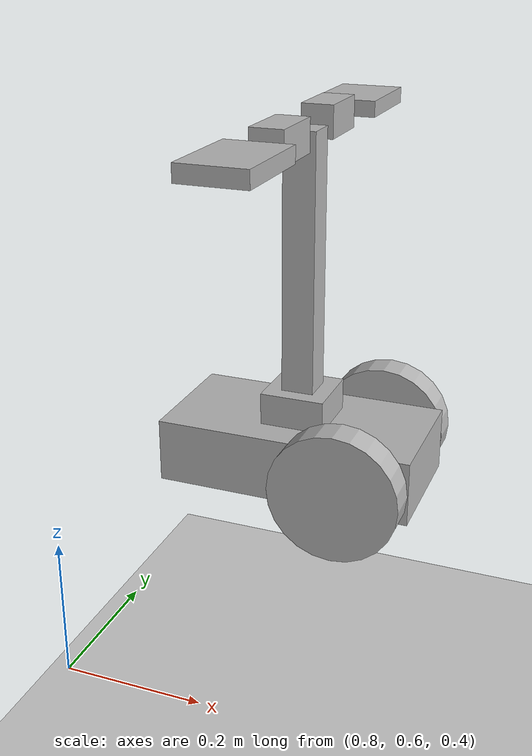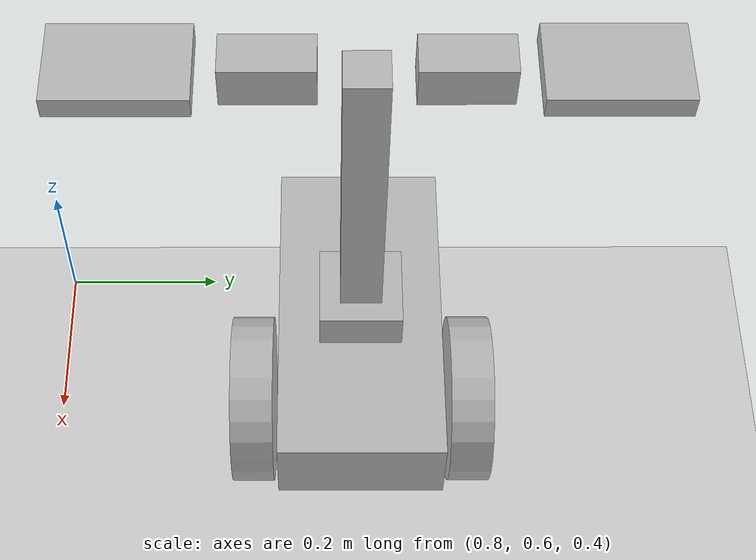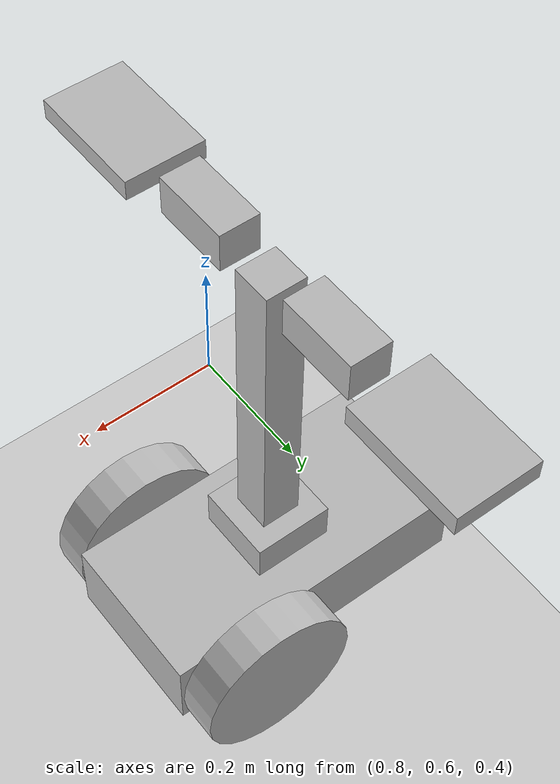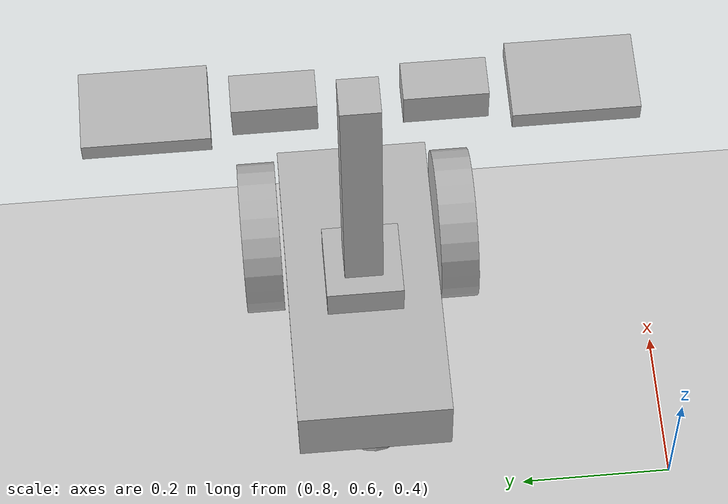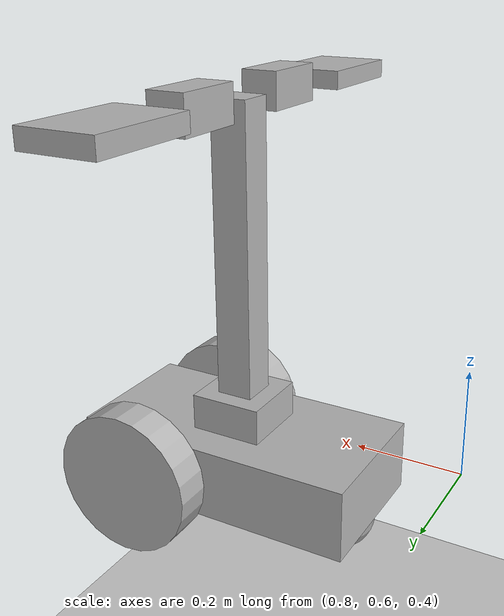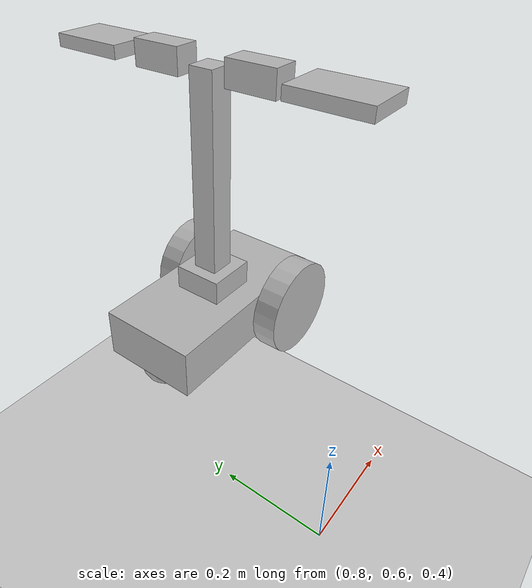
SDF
<?xml version="1.0" ?>
<sdf version="1.5">
  <world name="default">
    <!-- A global light source -->
    <include>
      <uri>model://sun</uri>
    </include>
    <!-- A ground plane -->
    <include>
      <uri>model://ground_plane</uri>
    </include>
    <!-- A robot : my_robot -->
    <include>
      <pose>1 1 0.5 0 0 0</pose>
      <uri>model://my_arm_robot</uri>
    </include>
  </world>
</sdf>

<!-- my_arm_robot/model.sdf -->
<sdf version='1.4'>
  <model name="my_arm_robot">

<static>0</static>

 <link name='chassis'>
            <pose>0 0 .1 0 0 0</pose>

            <collision name='collision'>
              <geometry>
                <box>
                  <size>.4 .2 .1</size>
                </box>
              </geometry>
            </collision>

            <visual name='visual'>
              <geometry>
                <box>
                  <size>.4 .2 .1</size>
                </box>
              </geometry>
            </visual>

 <collision name='caster_collision'>
            <pose>-0.15 0 -0.05 0 0 0</pose>
            <geometry>
                <sphere>
                <radius>.05</radius>
              </sphere>
            </geometry>

            <surface>
              <friction>
                <ode>
                  <mu>0</mu>
                  <mu2>0</mu2>
                  <slip1>0</slip1>
                  <slip2>0</slip2>
                </ode>
              </friction>
            </surface>
          </collision>

          <visual name='caster_visual'>
            <pose>-0.15 0 -0.05 0 0 0</pose>
            <geometry>
              <sphere>
                <radius>.05</radius>
              </sphere>
            </geometry>
          </visual>

          </link>

<link name='arm1'>
 	 <pose>0 0 .175 0 0 0</pose>
	 <collision name='collision'>
	      <geometry>
	        <box>
	          <size>.1 .1 .05</size>
	        </box>
	      </geometry>
	    </collision>

	    <visual name='visual'>
	      <geometry>
	        <box>
	          <size>.1 .1 .05</size>
	        </box>
	      </geometry>
	    </visual>
</link>

<link name='arm2'>
 	 <pose>.0 0 .4 0 0 0</pose>
	 <collision name='collision'>
	      <geometry>
	        <box>
	          <size>.05 .05 .4</size>
	        </box>
	      </geometry>
	    </collision>

	    <visual name='visual'>
	      <geometry>
	        <box>
	          <size>.05 .05 .4</size>
	        </box>
	      </geometry>
	    </visual>
</link>

<link name='hand1'>
 	 <pose>0 .1 .6 0 0 0</pose>
	 <collision name='collision'>
	      <geometry>
	        <box>
	          <size>.05 .1 .05</size>
	        </box>
	      </geometry>
	    </collision>

	    <visual name='visual'>
	      <geometry>
	        <box>
	          <size>.05 .1 .05</size>
	        </box>
	      </geometry>
	    </visual>
</link>

<link name='hand2'>
 	 <pose>0 -.1 .6 0 0 0</pose>
	 <collision name='collision'>
	      <geometry>
	        <box>
	          <size>.05 .1 .05</size>
	        </box>
	      </geometry>
	    </collision>

	    <visual name='visual'>
	      <geometry>
	        <box>
	          <size>.05 .1 .05</size>
	        </box>
	      </geometry>
	    </visual>
</link>

<link name='hand1_2'>
 	 <pose>0 .25 .6 0 0 0</pose>
	 <collision name='collision'>
	      <geometry>
	        <box>
	          <size>.1 .15 .025</size>
	        </box>
	      </geometry>
	    </collision>

	    <visual name='visual'>
	      <geometry>
	        <box>
	          <size>.1 .15 .025</size>
	        </box>
	      </geometry>
	    </visual>
</link>

<link name='hand2_2'>
 	 <pose>0 -.25 .6 0 0 0</pose>
	 <collision name='collision'>
	      <geometry>
	        <box>
	          <size>.1 .15 .025</size>
	        </box>
	      </geometry>
	    </collision>

	    <visual name='visual'>
	      <geometry>
	        <box>
	          <size>.1 .15 .025</size>
	        </box>
	      </geometry>
	    </visual>
</link>

<link name="left_wheel">
        <pose>0.1 0.13 0.1 0 1.5707 1.5707</pose>
        <collision name="collision">
          <geometry>
            <cylinder>
              <radius>.1</radius>
              <length>.05</length>
            </cylinder>
          </geometry>
        </collision>
        <visual name="visual">
          <geometry>
            <cylinder>
              <radius>.1</radius>
              <length>.05</length>
            </cylinder>
          </geometry>
        </visual>
      </link>

<link name="right_wheel">
        <pose>0.1 -0.13 0.1 0 1.5707 1.5707</pose>
        <collision name="collision">
          <geometry>
            <cylinder>
              <radius>.1</radius>
              <length>.05</length>
            </cylinder>
          </geometry>
        </collision>
        <visual name="visual">
          <geometry>
            <cylinder>
              <radius>.1</radius>
              <length>.05</length>
            </cylinder>
          </geometry>
        </visual>
      </link>

<!-- =============================== JOINTS for WHEELS ====== -->

     <joint type="revolute" name="left_wheel_hinge">
        <pose>0 0 -0.03 0 0 0</pose>
        <child>left_wheel</child>
        <parent>chassis</parent>
        <axis>
          <xyz>0 1 0</xyz>
        </axis>
      </joint>

      <joint type="revolute" name="right_wheel_hinge">
        <pose>0 0 0.03 0 0 0</pose>
        <child>right_wheel</child>
        <parent>chassis</parent>
        <axis>
          <xyz>0 1 0</xyz>
        </axis>
      </joint>

<!-- =============================== JOINTS for ARM ====== -->

      <joint type="revolute" name="arm1_hinge">
	<pose>0 0 .15 0 0 0</pose>
	<child>arm1</child>
	<parent>chassis</parent>
	<axis>
	  <xyz>0 0 1</xyz>
	</axis>
      </joint>

      <joint type="revolute" name="arm2_hinge">
	<pose>0 0 -.2 0 0 0</pose>
	<child>arm2</child>
	<parent>arm1</parent>
	<axis>
	  <xyz>0 1 0</xyz>
	</axis>
      </joint>

      <joint type="revolute" name="hand1_hinge">
	<pose>.03 0 0 0 0 0</pose>
	<child>hand1</child>
	<parent>arm2</parent>
	<axis>
	  <xyz>1 0 0</xyz>
	</axis>
      </joint>

      <joint type="revolute" name="hand2_hinge">
	<pose>.03 0 0 0 0 0</pose>
	<child>hand2</child>
	<parent>arm2</parent>
	<axis>
	  <xyz>1 0 0</xyz>
	</axis>
      </joint>

      <joint type="revolute" name="hand1_2_hinge">
	<pose>.03 0 0 0 0 0</pose>
	<child>hand1_2</child>
	<parent>hand1</parent>
	<axis>
	  <xyz>1 0 0</xyz>
	</axis>
      </joint>

      <joint type="revolute" name="hand2_2_hinge">
	<pose>.03 0 0 0 0 0</pose>
	<child>hand2_2</child>
	<parent>hand2</parent>
	<axis>
	  <xyz>1 0 0</xyz>
	</axis>
      </joint>

    <plugin name="differential_drive_controller" filename="libgazebo_ros_diff_drive.so">
      <robotNamespace>my_arm_robot</robotNamespace>
      <alwaysOn>true</alwaysOn>
      <updateRate>100.0</updateRate>
      <leftJoint>left_wheel_hinge</leftJoint>
      <rightJoint>right_wheel_hinge</rightJoint>
      <wheelSeparation>0.4</wheelSeparation>
      <wheelDiameter>0.215</wheelDiameter>
      <robotBaseFrame>chassis</robotBaseFrame>
      <torque>200</torque>
      <commandTopic>cmd_vel</commandTopic>
      <odometryTopic>odom</odometryTopic>
      <odometryFrame>odom</odometryFrame>
      <broadcastTF>true</broadcastTF>
      <legacyMode>1</legacyMode>
    </plugin>

    <plugin name="arm_controller" filename="libgazebo_ros_my_arm.so">
      <robotNamespace>my_arm_robot</robotNamespace>
      <alwaysOn>true</alwaysOn>
      <updateRate>100.0</updateRate>
      <commandTopic1>cmd_arm12</commandTopic1>
      <commandTopic2>cmd_hand12</commandTopic2>
      <shoulderYawJoint>arm1_hinge</shoulderYawJoint>
      <shoulderPitchJoint>arm2_hinge</shoulderPitchJoint>
      <finger1Joint>hand1_hinge</finger1Joint>
      <finger2Joint>hand2_hinge</finger2Joint>
      <finger12Joint>hand1_2_hinge</finger12Joint>
      <finger22Joint>hand2_2_hinge</finger22Joint>

    </plugin>

  </model>
</sdf>
